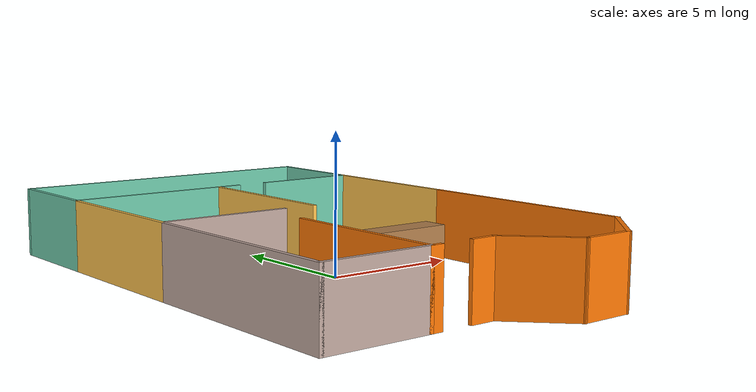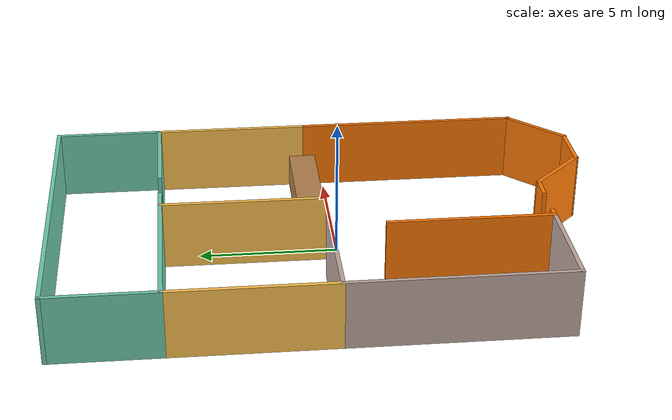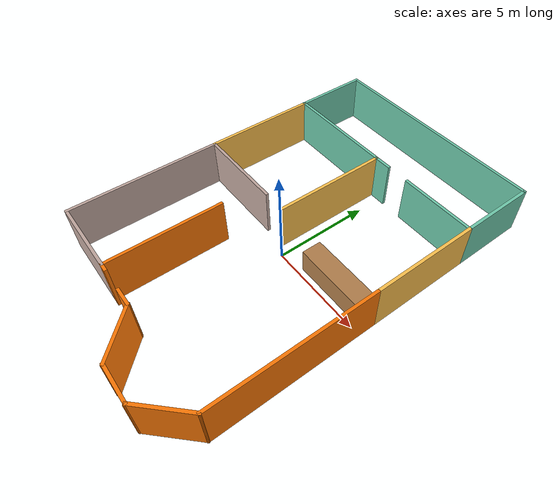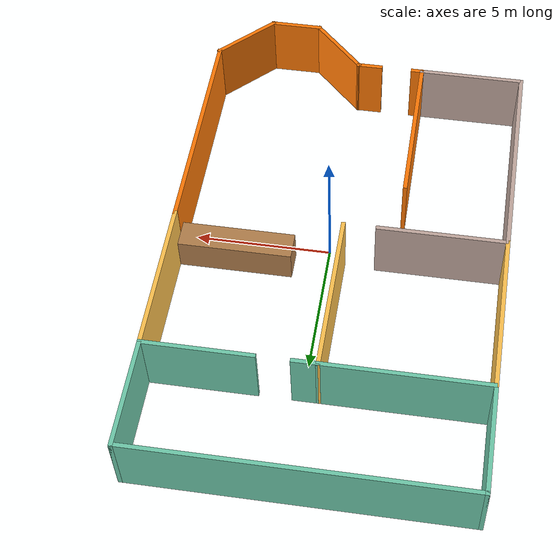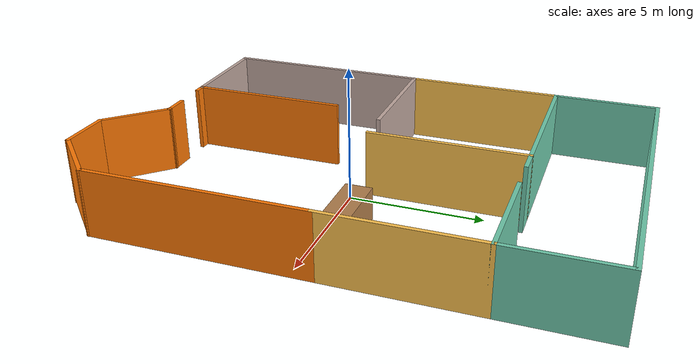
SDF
<?xml version='1.0'?>
<sdf version='1.7'>
  <model name='Model'>
    <pose>-0.460298 0.473462 0 0 -0 0</pose>
    <link name='Wall_0'>
      <collision name='Wall_0_Collision'>
        <geometry>
          <box>
            <size>12 0.15 2.5</size>
          </box>
        </geometry>
        <pose>0 0 1.25 0 -0 0</pose>
      </collision>
      <visual name='Wall_0_Visual'>
        <pose>0 0 1.25 0 -0 0</pose>
        <geometry>
          <box>
            <size>12 0.15 2.5</size>
          </box>
        </geometry>
        <material>
          <script>
            <uri>file://media/materials/scripts/gazebo.material</uri>
            <name>Gazebo/Grey</name>
          </script>
          <ambient>0.435294 0.796078 0.67451 1</ambient>
        </material>
        <meta>
          <layer>0</layer>
        </meta>
      </visual>
      <pose>-0.015533 9.70977 0 0 -0 0</pose>
    </link>
    <link name='Wall_11'>
      <collision name='Wall_11_Collision'>
        <geometry>
          <box>
            <size>4 0.15 2.5</size>
          </box>
        </geometry>
        <pose>0 0 1.25 0 -0 0</pose>
      </collision>
      <visual name='Wall_11_Visual'>
        <pose>0 0 1.25 0 -0 0</pose>
        <geometry>
          <box>
            <size>4 0.15 2.5</size>
          </box>
        </geometry>
        <material>
          <script>
            <uri>file://media/materials/scripts/gazebo.material</uri>
            <name>Gazebo/Grey</name>
          </script>
          <ambient>0.435294 0.796078 0.67451 1</ambient>
        </material>
        <meta>
          <layer>0</layer>
        </meta>
      </visual>
      <pose>5.90947 7.78477 0 0 -0 -1.5708</pose>
    </link>
    <link name='Wall_12'>
      <collision name='Wall_12_Collision'>
        <geometry>
          <box>
            <size>4 0.15 2.5</size>
          </box>
        </geometry>
        <pose>0 0 1.25 0 -0 0</pose>
      </collision>
      <visual name='Wall_12_Visual'>
        <pose>0 0 1.25 0 -0 0</pose>
        <geometry>
          <box>
            <size>4 0.15 2.5</size>
          </box>
        </geometry>
        <material>
          <script>
            <uri>file://media/materials/scripts/gazebo.material</uri>
            <name>Gazebo/Grey</name>
          </script>
          <ambient>0.435294 0.796078 0.67451 1</ambient>
        </material>
        <meta>
          <layer>0</layer>
        </meta>
      </visual>
      <pose>3.98447 5.85977 0 0 -0 3.14159</pose>
    </link>
    <link name='Wall_14'>
      <collision name='Wall_14_Collision'>
        <geometry>
          <box>
            <size>5.65274 0.15 2.5</size>
          </box>
        </geometry>
        <pose>0 0 1.25 0 -0 0</pose>
      </collision>
      <visual name='Wall_14_Visual'>
        <pose>0 0 1.25 0 -0 0</pose>
        <geometry>
          <box>
            <size>5.65274 0.15 2.5</size>
          </box>
        </geometry>
        <material>
          <script>
            <uri>file://media/materials/scripts/gazebo.material</uri>
            <name>Gazebo/Grey</name>
          </script>
          <ambient>1 0.764706 0.305882 1</ambient>
        </material>
        <meta>
          <layer>0</layer>
        </meta>
      </visual>
      <pose>5.90938 3.10857 0 0 -0 -1.57083</pose>
    </link>
    <link name='Wall_17'>
      <collision name='Wall_17_Collision'>
        <geometry>
          <box>
            <size>8 0.15 2.5</size>
          </box>
        </geometry>
        <pose>0 0 1.25 0 -0 0</pose>
      </collision>
      <visual name='Wall_17_Visual'>
        <pose>0 0 1.25 0 -0 0</pose>
        <geometry>
          <box>
            <size>8 0.15 2.5</size>
          </box>
        </geometry>
        <material>
          <script>
            <uri>file://media/materials/scripts/gazebo.material</uri>
            <name>Gazebo/Grey</name>
          </script>
          <ambient>0.760784 0.662745 0.627451 1</ambient>
        </material>
        <meta>
          <layer>0</layer>
        </meta>
      </visual>
      <pose>-5.94053 -3.91523 0 0 -0 -1.5708</pose>
    </link>
    <link name='Wall_18'>
      <collision name='Wall_18_Collision'>
        <geometry>
          <box>
            <size>4 0.15 2.5</size>
          </box>
        </geometry>
        <pose>0 0 1.25 0 -0 0</pose>
      </collision>
      <visual name='Wall_18_Visual'>
        <pose>0 0 1.25 0 -0 0</pose>
        <geometry>
          <box>
            <size>4 0.15 2.5</size>
          </box>
        </geometry>
        <material>
          <script>
            <uri>file://media/materials/scripts/gazebo.material</uri>
            <name>Gazebo/Grey</name>
          </script>
          <ambient>0.760784 0.662745 0.627451 1</ambient>
        </material>
        <meta>
          <layer>0</layer>
        </meta>
      </visual>
      <pose>-4.01553 -7.84023 0 0 -0 0</pose>
    </link>
    <link name='Wall_19'>
      <collision name='Wall_19_Collision'>
        <geometry>
          <box>
            <size>6 0.15 2.5</size>
          </box>
        </geometry>
        <pose>0 0 1.25 0 -0 0</pose>
      </collision>
      <visual name='Wall_19_Visual'>
        <pose>0 0 1.25 0 -0 0</pose>
        <geometry>
          <box>
            <size>6 0.15 2.5</size>
          </box>
        </geometry>
        <material>
          <script>
            <uri>file://media/materials/scripts/gazebo.material</uri>
            <name>Gazebo/Grey</name>
          </script>
          <ambient>0.996078 0.47451 0.0196078 1</ambient>
        </material>
        <meta>
          <layer>0</layer>
        </meta>
      </visual>
      <pose>-2.09053 -4.91523 0 0 -0 1.5708</pose>
    </link>
    <link name='Wall_2'>
      <collision name='Wall_2_Collision'>
        <geometry>
          <box>
            <size>4 0.15 2.5</size>
          </box>
        </geometry>
        <pose>0 0 1.25 0 -0 0</pose>
      </collision>
      <visual name='Wall_2_Visual'>
        <pose>0 0 1.25 0 -0 0</pose>
        <geometry>
          <box>
            <size>4 0.15 2.5</size>
          </box>
        </geometry>
        <material>
          <script>
            <uri>file://media/materials/scripts/gazebo.material</uri>
            <name>Gazebo/Grey</name>
          </script>
          <ambient>0.435294 0.796078 0.67451 1</ambient>
        </material>
        <meta>
          <layer>0</layer>
        </meta>
      </visual>
      <pose>-5.94053 7.78477 0 0 -0 -1.5708</pose>
    </link>
    <link name='Wall_22'>
      <collision name='Wall_22_Collision'>
        <geometry>
          <box>
            <size>8.34781 0.15 2.5</size>
          </box>
        </geometry>
        <pose>0 0 1.25 0 -0 0</pose>
      </collision>
      <visual name='Wall_22_Visual'>
        <pose>0 0 1.25 0 -0 0</pose>
        <geometry>
          <box>
            <size>8.34781 0.15 2.5</size>
          </box>
        </geometry>
        <material>
          <script>
            <uri>file://media/materials/scripts/gazebo.material</uri>
            <name>Gazebo/Grey</name>
          </script>
          <ambient>0.996078 0.47451 0.0196078 1</ambient>
        </material>
        <meta>
          <layer>0</layer>
        </meta>
      </visual>
      <pose>5.90938 -3.74143 0 0 -0 -1.57078</pose>
    </link>
    <link name='Wall_23'>
      <collision name='Wall_23_Collision'>
        <geometry>
          <box>
            <size>2.75 0.15 2.5</size>
          </box>
        </geometry>
        <pose>0 0 1.25 0 -0 0</pose>
      </collision>
      <visual name='Wall_23_Visual'>
        <pose>0 0 1.25 0 -0 0</pose>
        <geometry>
          <box>
            <size>2.75 0.15 2.5</size>
          </box>
        </geometry>
        <material>
          <script>
            <uri>file://media/materials/scripts/gazebo.material</uri>
            <name>Gazebo/Grey</name>
          </script>
          <ambient>0.996078 0.47451 0.0196078 1</ambient>
        </material>
        <meta>
          <layer>0</layer>
        </meta>
      </visual>
      <pose>4.99023 -8.75947 0 0 -0 -2.35619</pose>
    </link>
    <link name='Wall_24'>
      <collision name='Wall_24_Collision'>
        <geometry>
          <box>
            <size>2 0.15 2.5</size>
          </box>
        </geometry>
        <pose>0 0 1.25 0 -0 0</pose>
      </collision>
      <visual name='Wall_24_Visual'>
        <pose>0 0 1.25 0 -0 0</pose>
        <geometry>
          <box>
            <size>2 0.15 2.5</size>
          </box>
        </geometry>
        <material>
          <script>
            <uri>file://media/materials/scripts/gazebo.material</uri>
            <name>Gazebo/Grey</name>
          </script>
          <ambient>0.996078 0.47451 0.0196078 1</ambient>
        </material>
        <meta>
          <layer>0</layer>
        </meta>
      </visual>
      <pose>3.14599 -9.67871 0 0 -0 3.14159</pose>
    </link>
    <link name='Wall_25'>
      <collision name='Wall_25_Collision'>
        <geometry>
          <box>
            <size>2.75 0.15 2.5</size>
          </box>
        </geometry>
        <pose>0 0 1.25 0 -0 0</pose>
      </collision>
      <visual name='Wall_25_Visual'>
        <pose>0 0 1.25 0 -0 0</pose>
        <geometry>
          <box>
            <size>2.75 0.15 2.5</size>
          </box>
        </geometry>
        <material>
          <script>
            <uri>file://media/materials/scripts/gazebo.material</uri>
            <name>Gazebo/Grey</name>
          </script>
          <ambient>0.996078 0.47451 0.0196078 1</ambient>
        </material>
        <meta>
          <layer>0</layer>
        </meta>
      </visual>
      <pose>1.30175 -8.75947 0 0 -0 2.35619</pose>
    </link>
    <link name='Wall_26'>
      <collision name='Wall_26_Collision'>
        <geometry>
          <box>
            <size>1 0.15 2.5</size>
          </box>
        </geometry>
        <pose>0 0 1.25 0 -0 0</pose>
      </collision>
      <visual name='Wall_26_Visual'>
        <pose>0 0 1.25 0 -0 0</pose>
        <geometry>
          <box>
            <size>1 0.15 2.5</size>
          </box>
        </geometry>
        <material>
          <script>
            <uri>file://media/materials/scripts/gazebo.material</uri>
            <name>Gazebo/Grey</name>
          </script>
          <ambient>0.996078 0.47451 0.0196078 1</ambient>
        </material>
        <meta>
          <layer>0</layer>
        </meta>
      </visual>
      <pose>-0.042488 -7.84023 0 0 -0 3.14159</pose>
    </link>
    <link name='Wall_28'>
      <collision name='Wall_28_Collision'>
        <geometry>
          <box>
            <size>0.5 0.15 2.5</size>
          </box>
        </geometry>
        <pose>0 0 1.25 0 -0 0</pose>
      </collision>
      <visual name='Wall_28_Visual'>
        <pose>0 0 1.25 0 -0 0</pose>
        <geometry>
          <box>
            <size>0.5 0.15 2.5</size>
          </box>
        </geometry>
        <material>
          <script>
            <uri>file://media/materials/scripts/gazebo.material</uri>
            <name>Gazebo/Grey</name>
          </script>
          <ambient>0.996078 0.47451 0.0196078 1</ambient>
        </material>
        <meta>
          <layer>0</layer>
        </meta>
      </visual>
      <pose>-1.91553 -7.84023 0 0 -0 0</pose>
    </link>
    <link name='Wall_3'>
      <collision name='Wall_3_Collision'>
        <geometry>
          <box>
            <size>6 0.15 2.5</size>
          </box>
        </geometry>
        <pose>0 0 1.25 0 -0 0</pose>
      </collision>
      <visual name='Wall_3_Visual'>
        <pose>0 0 1.25 0 -0 0</pose>
        <geometry>
          <box>
            <size>6 0.15 2.5</size>
          </box>
        </geometry>
        <material>
          <script>
            <uri>file://media/materials/scripts/gazebo.material</uri>
            <name>Gazebo/Grey</name>
          </script>
          <ambient>0.435294 0.796078 0.67451 1</ambient>
        </material>
        <meta>
          <layer>0</layer>
        </meta>
      </visual>
      <pose>-3.01553 5.85977 0 0 -0 0</pose>
    </link>
    <link name='Wall_31'>
      <collision name='Wall_31_Collision'>
        <geometry>
          <box>
            <size>4.25 1 1.25</size>
          </box>
        </geometry>
        <pose>0 0 0.625 0 -0 0</pose>
      </collision>
      <visual name='Wall_31_Visual'>
        <pose>0 0 0.625 0 -0 0</pose>
        <geometry>
          <box>
            <size>4.25 1 1.25</size>
          </box>
        </geometry>
        <material>
          <script>
            <uri>file://media/materials/scripts/gazebo.material</uri>
            <name>Gazebo/Wood</name>
          </script>
          <ambient>1 1 1 1</ambient>
        </material>
        <meta>
          <layer>0</layer>
        </meta>
      </visual>
      <pose>3.8083 0.326538 0 0 -0 0</pose>
    </link>
    <link name='Wall_4'>
      <collision name='Wall_4_Collision'>
        <geometry>
          <box>
            <size>5.9849 0.15 2.5</size>
          </box>
        </geometry>
        <pose>0 0 1.25 0 -0 0</pose>
      </collision>
      <visual name='Wall_4_Visual'>
        <pose>0 0 1.25 0 -0 0</pose>
        <geometry>
          <box>
            <size>5.9849 0.15 2.5</size>
          </box>
        </geometry>
        <material>
          <script>
            <uri>file://media/materials/scripts/gazebo.material</uri>
            <name>Gazebo/Grey</name>
          </script>
          <ambient>1 0.764706 0.305882 1</ambient>
        </material>
        <meta>
          <layer>0</layer>
        </meta>
      </visual>
      <pose>-0.098094 2.94233 0 0 -0 -1.57339</pose>
    </link>
    <link name='Wall_6'>
      <collision name='Wall_6_Collision'>
        <geometry>
          <box>
            <size>6 0.15 2.5</size>
          </box>
        </geometry>
        <pose>0 0 1.25 0 -0 0</pose>
      </collision>
      <visual name='Wall_6_Visual'>
        <pose>0 0 1.25 0 -0 0</pose>
        <geometry>
          <box>
            <size>6 0.15 2.5</size>
          </box>
        </geometry>
        <material>
          <script>
            <uri>file://media/materials/scripts/gazebo.material</uri>
            <name>Gazebo/Grey</name>
          </script>
          <ambient>1 0.764706 0.305882 1</ambient>
        </material>
        <meta>
          <layer>0</layer>
        </meta>
      </visual>
      <pose>-5.94053 2.93477 0 0 -0 -1.5708</pose>
    </link>
    <link name='Wall_7'>
      <collision name='Wall_7_Collision'>
        <geometry>
          <box>
            <size>4.75 0.15 2.5</size>
          </box>
        </geometry>
        <pose>0 0 1.25 0 -0 0</pose>
      </collision>
      <visual name='Wall_7_Visual'>
        <pose>0 0 1.25 0 -0 0</pose>
        <geometry>
          <box>
            <size>4.75 0.15 2.5</size>
          </box>
        </geometry>
        <material>
          <script>
            <uri>file://media/materials/scripts/gazebo.material</uri>
            <name>Gazebo/Grey</name>
          </script>
          <ambient>0.760784 0.662745 0.627451 1</ambient>
        </material>
        <meta>
          <layer>0</layer>
        </meta>
      </visual>
      <pose>-3.64053 0.009772 0 0 -0 0</pose>
    </link>
    <link name='Wall_9'>
      <collision name='Wall_9_Collision'>
        <geometry>
          <box>
            <size>1 0.15 2.5</size>
          </box>
        </geometry>
        <pose>0 0 1.25 0 -0 0</pose>
      </collision>
      <visual name='Wall_9_Visual'>
        <pose>0 0 1.25 0 -0 0</pose>
        <geometry>
          <box>
            <size>1 0.15 2.5</size>
          </box>
        </geometry>
        <material>
          <script>
            <uri>file://media/materials/scripts/gazebo.material</uri>
            <name>Gazebo/Grey</name>
          </script>
          <ambient>0.435294 0.796078 0.67451 1</ambient>
        </material>
        <meta>
          <layer>0</layer>
        </meta>
      </visual>
      <pose>0.334467 5.85977 0 0 -0 0</pose>
    </link>
    <static>1</static>
  </model>
</sdf>
